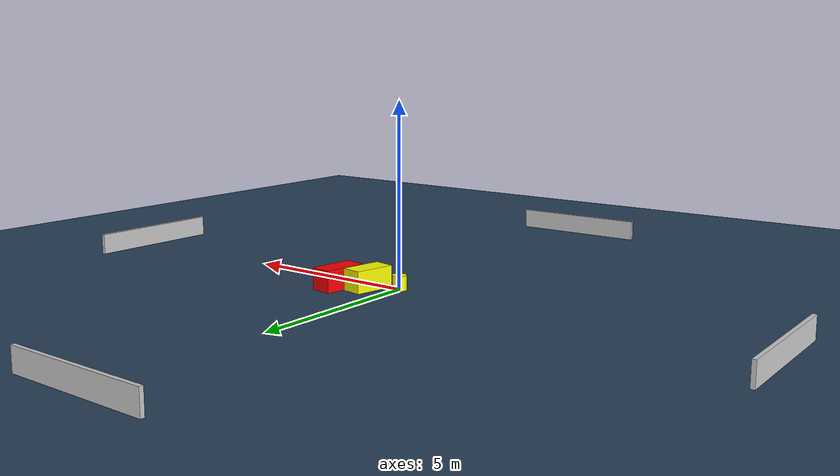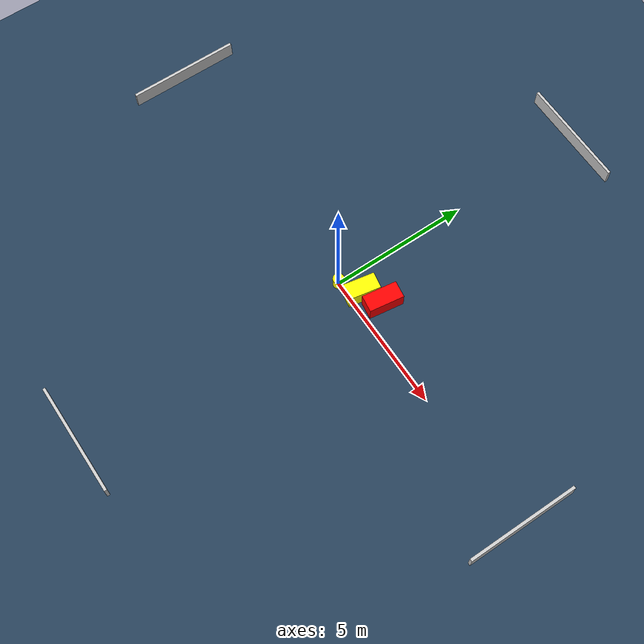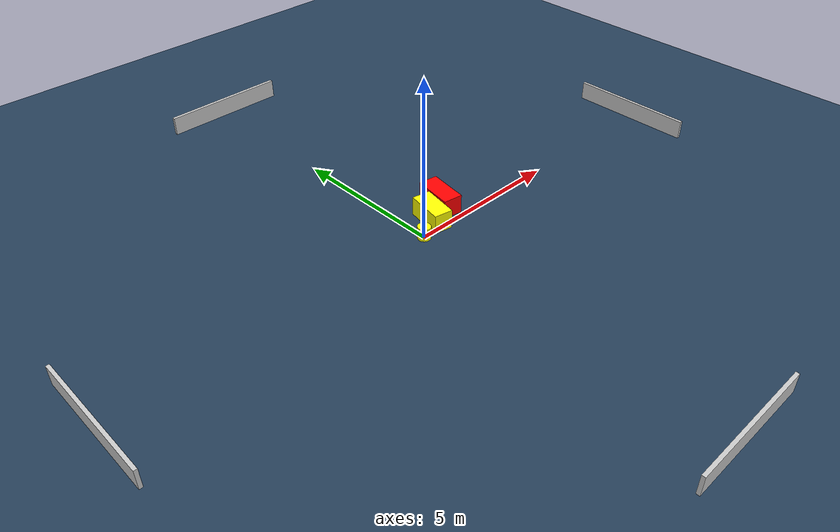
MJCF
<?xml version="1.0" ?>
<mujoco model="generated_environment">
  <option timestep="0.01" integrator="RK4" cone="elliptic"/>
  <default>
    <geom density="1"/>
  </default>
  <asset>
    <texture builtin="gradient" height="3072" name="skybox" rgb1="0.3 0.5 0.7" rgb2="0 0 0" type="skybox" width="512"/>
    <texture builtin="checker" height="300" name="groundplane" rgb1="0.2 0.3 0.4" rgb2="0.1 0.2 0.3" type="2d" width="300"/>
    <material name="groundplane" reflectance="0.2" texrepeat="5 5" texture="groundplane"/>
  </asset>
  <worldbody>
    <light dir="0 0 -1" directional="true" pos="0 0 1.5"/>
    <geom condim="3" friction="0.5 0.005 0.001" material="groundplane" name="floor" pos="0 0 0" size="0 0 0.05" type="plane"/>
    <body name="walls">
      <geom name="wall_1" condim="4" pos="-10.0 0.0 0.3" rgba="0.800000011920929 0.800000011920929 0.800000011920929 1.0" size="0.05 2.0 0.3" type="box"/>
      <geom name="wall_2" condim="4" pos="10.0 0.0 0.3" rgba="0.800000011920929 0.800000011920929 0.800000011920929 1.0" size="0.05 2.0 0.3" type="box"/>
      <geom name="wall_3" condim="4" pos="0.0 -10.0 0.3" rgba="0.800000011920929 0.800000011920929 0.800000011920929 1.0" size="2.0 0.05 0.3" type="box"/>
      <geom name="wall_4" condim="4" pos="0.0 10.0 0.3" rgba="0.800000011920929 0.800000011920929 0.800000011920929 1.0" size="2.0 0.05 0.3" type="box"/>
    </body>
    <body name="robot">
      <joint name="joint_x" type="slide" pos="0 0 0" axis="1 0 0"/>
      <joint name="joint_y" type="slide" pos="0 0 0" axis="0 1 0"/>
      <geom name="robot" type="cylinder" pos="0.0 0.0 0.2" size="0.2 0.2 0.0" mass="5.0" friction="1.0 0.005 0.0001" condim="4" rgba="1.0 1.0 0.0 1.0"/>
    </body>
    <body name="obstacle_1_movable">
      <geom name="obstacle_1_movable" condim="4" pos="0.7333054081391481 0.42402495122538814 0.3" euler="0 0 169.63041810747512" friction="0.0 0.005 0.001" rgba="1.0 1.0 0.0 1.0" size="0.29173438287495074 0.5806189140476252 0.3" type="box" mass="0.1"/>
      <joint type="free"/>
    </body>
    <body name="obstacle_2_static">
      <geom name="obstacle_2_static" condim="4" pos="1.4395052891291784 0.8003050117435296 0.3" euler="0 0 261.70273145800275" friction="0.0 0.005 0.001" rgba="1.0 0.0 0.0 1.0" size="0.6240498296947145 0.30426467728338413 0.3" type="box"/>
    </body>
  </worldbody>
  <actuator>
    <motor name="actuator_x" joint="joint_x" gear="1" ctrlrange="-1 1"/>
    <motor name="actuator_y" joint="joint_y" gear="1" ctrlrange="-1 1"/>
  </actuator>
</mujoco>
